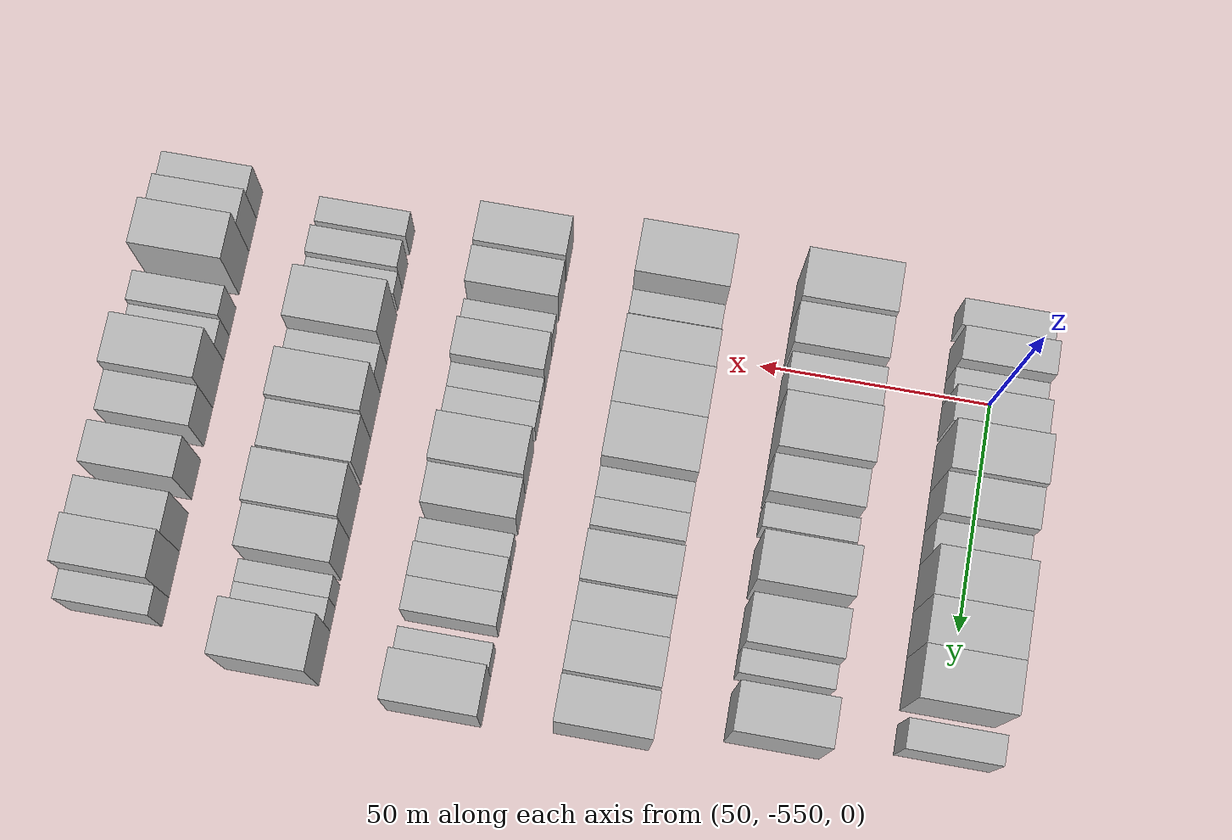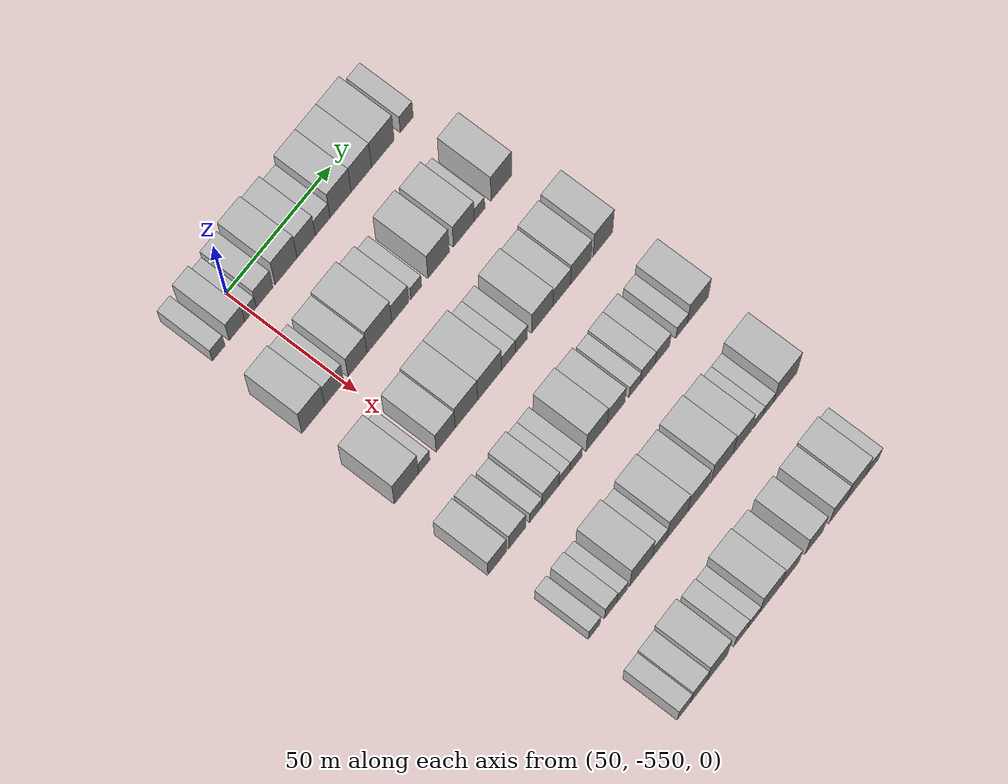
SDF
<sdf version="1.6">
 <world name="default">
  <model name="building_1">
   <static>1</static>
   <pose>50.0000 -566.0021 0 0.000000 0.000000 0.000000</pose>
   <link name="link">
    <pose>0 0 6.00 0 0 0</pose>
    <collision name="collision"><geometry><box><size>20.0000 5.9958 12.0000</size></box></geometry></collision>
    <visual name="visual">
     <cast_shadows>0</cast_shadows>
     <geometry><box><size>20.0000 5.9958 12.0000</size></box></geometry>
     <material>
      <script>
       <uri>model://HANNAS_wall/materials/scripts</uri>
       <uri>model://HANNAS_wall/materials/textures</uri>
       <name>vrc/HANNAS_wall</name>
      </script>
     </material>
    </visual>
   </link>
  </model>
  <model name="building_2">
   <static>1</static>
   <pose>50.0000 -557.2755 0 0.000000 0.000000 0.000000</pose>
   <link name="link">
    <pose>0 0 9.00 0 0 0</pose>
    <collision name="collision"><geometry><box><size>20.0000 7.4574 18.0000</size></box></geometry></collision>
    <visual name="visual">
     <cast_shadows>0</cast_shadows>
     <geometry><box><size>20.0000 7.4574 18.0000</size></box></geometry>
     <material>
      <script>
       <uri>model://HANNAS_wall/materials/scripts</uri>
       <uri>model://HANNAS_wall/materials/textures</uri>
       <name>vrc/HANNAS_wall</name>
      </script>
     </material>
    </visual>
   </link>
  </model>
  <model name="building_3">
   <static>1</static>
   <pose>50.0000 -550.8041 0 0.000000 0.000000 0.000000</pose>
   <link name="link">
    <pose>0 0 6.00 0 0 0</pose>
    <collision name="collision"><geometry><box><size>20.0000 5.4854 12.0000</size></box></geometry></collision>
    <visual name="visual">
     <cast_shadows>0</cast_shadows>
     <geometry><box><size>20.0000 5.4854 12.0000</size></box></geometry>
     <material>
      <script>
       <uri>model://HANNAS_wall/materials/scripts</uri>
       <uri>model://HANNAS_wall/materials/textures</uri>
       <name>vrc/HANNAS_wall</name>
      </script>
     </material>
    </visual>
   </link>
  </model>
  <model name="building_4">
   <static>1</static>
   <pose>50.0000 -544.0784 0 0.000000 0.000000 0.000000</pose>
   <link name="link">
    <pose>0 0 9.00 0 0 0</pose>
    <collision name="collision"><geometry><box><size>20.0000 7.9661 18.0000</size></box></geometry></collision>
    <visual name="visual">
     <cast_shadows>0</cast_shadows>
     <geometry><box><size>20.0000 7.9661 18.0000</size></box></geometry>
     <material>
      <script>
       <uri>model://HANNAS_wall/materials/scripts</uri>
       <uri>model://HANNAS_wall/materials/textures</uri>
       <name>vrc/HANNAS_wall</name>
      </script>
     </material>
    </visual>
   </link>
  </model>
  <model name="building_5">
   <static>1</static>
   <pose>50.0000 -533.8237 0 0.000000 0.000000 0.000000</pose>
   <link name="link">
    <pose>0 0 12.00 0 0 0</pose>
    <collision name="collision"><geometry><box><size>20.0000 10.5432 24.0000</size></box></geometry></collision>
    <visual name="visual">
     <cast_shadows>0</cast_shadows>
     <geometry><box><size>20.0000 10.5432 24.0000</size></box></geometry>
     <material>
      <script>
       <uri>model://HANNAS_wall/materials/scripts</uri>
       <uri>model://HANNAS_wall/materials/textures</uri>
       <name>vrc/HANNAS_wall</name>
      </script>
     </material>
    </visual>
   </link>
  </model>
  <model name="building_6">
   <static>1</static>
   <pose>50.0000 -524.1240 0 0.000000 0.000000 0.000000</pose>
   <link name="link">
    <pose>0 0 10.50 0 0 0</pose>
    <collision name="collision"><geometry><box><size>20.0000 8.8564 21.0000</size></box></geometry></collision>
    <visual name="visual">
     <cast_shadows>0</cast_shadows>
     <geometry><box><size>20.0000 8.8564 21.0000</size></box></geometry>
     <material>
      <script>
       <uri>model://HANNAS_wall/materials/scripts</uri>
       <uri>model://HANNAS_wall/materials/textures</uri>
       <name>vrc/HANNAS_wall</name>
      </script>
     </material>
    </visual>
   </link>
  </model>
  <model name="building_7">
   <static>1</static>
   <pose>50.0000 -516.1544 0 0.000000 0.000000 0.000000</pose>
   <link name="link">
    <pose>0 0 7.50 0 0 0</pose>
    <collision name="collision"><geometry><box><size>20.0000 7.0828 15.0000</size></box></geometry></collision>
    <visual name="visual">
     <cast_shadows>0</cast_shadows>
     <geometry><box><size>20.0000 7.0828 15.0000</size></box></geometry>
     <material>
      <script>
       <uri>model://HANNAS_wall/materials/scripts</uri>
       <uri>model://HANNAS_wall/materials/textures</uri>
       <name>vrc/HANNAS_wall</name>
      </script>
     </material>
    </visual>
   </link>
  </model>
  <model name="building_8">
   <static>1</static>
   <pose>50.0000 -507.4797 0 0.000000 0.000000 0.000000</pose>
   <link name="link">
    <pose>0 0 12.00 0 0 0</pose>
    <collision name="collision"><geometry><box><size>20.0000 10.2665 24.0000</size></box></geometry></collision>
    <visual name="visual">
     <cast_shadows>0</cast_shadows>
     <geometry><box><size>20.0000 10.2665 24.0000</size></box></geometry>
     <material>
      <script>
       <uri>model://HANNAS_wall/materials/scripts</uri>
       <uri>model://HANNAS_wall/materials/textures</uri>
       <name>vrc/HANNAS_wall</name>
      </script>
     </material>
    </visual>
   </link>
  </model>
  <model name="building_9">
   <static>1</static>
   <pose>50.0000 -497.3951 0 0.000000 0.000000 0.000000</pose>
   <link name="link">
    <pose>0 0 12.00 0 0 0</pose>
    <collision name="collision"><geometry><box><size>20.0000 9.9028 24.0000</size></box></geometry></collision>
    <visual name="visual">
     <cast_shadows>0</cast_shadows>
     <geometry><box><size>20.0000 9.9028 24.0000</size></box></geometry>
     <material>
      <script>
       <uri>model://HANNAS_wall/materials/scripts</uri>
       <uri>model://HANNAS_wall/materials/textures</uri>
       <name>vrc/HANNAS_wall</name>
      </script>
     </material>
    </visual>
   </link>
  </model>
  <model name="building_10">
   <static>1</static>
   <pose>50.0000 -486.9409 0 0.000000 0.000000 0.000000</pose>
   <link name="link">
    <pose>0 0 12.00 0 0 0</pose>
    <collision name="collision"><geometry><box><size>20.0000 11.0058 24.0000</size></box></geometry></collision>
    <visual name="visual">
     <cast_shadows>0</cast_shadows>
     <geometry><box><size>20.0000 11.0058 24.0000</size></box></geometry>
     <material>
      <script>
       <uri>model://HANNAS_wall/materials/scripts</uri>
       <uri>model://HANNAS_wall/materials/textures</uri>
       <name>vrc/HANNAS_wall</name>
      </script>
     </material>
    </visual>
   </link>
  </model>
  <model name="building_11">
   <static>1</static>
   <pose>50.0000 -475.2833 0 0.000000 0.000000 0.000000</pose>
   <link name="link">
    <pose>0 0 7.50 0 0 0</pose>
    <collision name="collision"><geometry><box><size>20.0000 6.3094 15.0000</size></box></geometry></collision>
    <visual name="visual">
     <cast_shadows>0</cast_shadows>
     <geometry><box><size>20.0000 6.3094 15.0000</size></box></geometry>
     <material>
      <script>
       <uri>model://HANNAS_wall/materials/scripts</uri>
       <uri>model://HANNAS_wall/materials/textures</uri>
       <name>vrc/HANNAS_wall</name>
      </script>
     </material>
    </visual>
   </link>
  </model>
  <model name="building_125">
   <static>1</static>
   <pose>85.0000 -564.5752 0 0.000000 0.000000 0.000000</pose>
   <link name="link">
    <pose>0 0 12.00 0 0 0</pose>
    <collision name="collision"><geometry><box><size>20.0000 10.8495 24.0000</size></box></geometry></collision>
    <visual name="visual">
     <cast_shadows>0</cast_shadows>
     <geometry><box><size>20.0000 10.8495 24.0000</size></box></geometry>
     <material>
      <script>
       <uri>model://HANNAS_wall/materials/scripts</uri>
       <uri>model://HANNAS_wall/materials/textures</uri>
       <name>vrc/HANNAS_wall</name>
      </script>
     </material>
    </visual>
   </link>
  </model>
  <model name="building_126">
   <static>1</static>
   <pose>85.0000 -554.5731 0 0.000000 0.000000 0.000000</pose>
   <link name="link">
    <pose>0 0 10.50 0 0 0</pose>
    <collision name="collision"><geometry><box><size>20.0000 9.1548 21.0000</size></box></geometry></collision>
    <visual name="visual">
     <cast_shadows>0</cast_shadows>
     <geometry><box><size>20.0000 9.1548 21.0000</size></box></geometry>
     <material>
      <script>
       <uri>model://HANNAS_wall/materials/scripts</uri>
       <uri>model://HANNAS_wall/materials/textures</uri>
       <name>vrc/HANNAS_wall</name>
      </script>
     </material>
    </visual>
   </link>
  </model>
  <model name="building_127">
   <static>1</static>
   <pose>85.0000 -543.4138 0 0.000000 0.000000 0.000000</pose>
   <link name="link">
    <pose>0 0 10.50 0 0 0</pose>
    <collision name="collision"><geometry><box><size>20.0000 9.1639 21.0000</size></box></geometry></collision>
    <visual name="visual">
     <cast_shadows>0</cast_shadows>
     <geometry><box><size>20.0000 9.1639 21.0000</size></box></geometry>
     <material>
      <script>
       <uri>model://HANNAS_wall/materials/scripts</uri>
       <uri>model://HANNAS_wall/materials/textures</uri>
       <name>vrc/HANNAS_wall</name>
      </script>
     </material>
    </visual>
   </link>
  </model>
  <model name="building_128">
   <static>1</static>
   <pose>85.0000 -532.8423 0 0.000000 0.000000 0.000000</pose>
   <link name="link">
    <pose>0 0 12.00 0 0 0</pose>
    <collision name="collision"><geometry><box><size>20.0000 11.9789 24.0000</size></box></geometry></collision>
    <visual name="visual">
     <cast_shadows>0</cast_shadows>
     <geometry><box><size>20.0000 11.9789 24.0000</size></box></geometry>
     <material>
      <script>
       <uri>model://HANNAS_wall/materials/scripts</uri>
       <uri>model://HANNAS_wall/materials/textures</uri>
       <name>vrc/HANNAS_wall</name>
      </script>
     </material>
    </visual>
   </link>
  </model>
  <model name="building_129">
   <static>1</static>
   <pose>85.0000 -522.7722 0 0.000000 0.000000 0.000000</pose>
   <link name="link">
    <pose>0 0 9.00 0 0 0</pose>
    <collision name="collision"><geometry><box><size>20.0000 8.1614 18.0000</size></box></geometry></collision>
    <visual name="visual">
     <cast_shadows>0</cast_shadows>
     <geometry><box><size>20.0000 8.1614 18.0000</size></box></geometry>
     <material>
      <script>
       <uri>model://HANNAS_wall/materials/scripts</uri>
       <uri>model://HANNAS_wall/materials/textures</uri>
       <name>vrc/HANNAS_wall</name>
      </script>
     </material>
    </visual>
   </link>
  </model>
  <model name="building_130">
   <static>1</static>
   <pose>85.0000 -515.0618 0 0.000000 0.000000 0.000000</pose>
   <link name="link">
    <pose>0 0 6.00 0 0 0</pose>
    <collision name="collision"><geometry><box><size>20.0000 5.2594 12.0000</size></box></geometry></collision>
    <visual name="visual">
     <cast_shadows>0</cast_shadows>
     <geometry><box><size>20.0000 5.2594 12.0000</size></box></geometry>
     <material>
      <script>
       <uri>model://HANNAS_wall/materials/scripts</uri>
       <uri>model://HANNAS_wall/materials/textures</uri>
       <name>vrc/HANNAS_wall</name>
      </script>
     </material>
    </visual>
   </link>
  </model>
  <model name="building_131">
   <static>1</static>
   <pose>85.0000 -504.2198 0 0.000000 0.000000 0.000000</pose>
   <link name="link">
    <pose>0 0 12.00 0 0 0</pose>
    <collision name="collision"><geometry><box><size>20.0000 10.4248 24.0000</size></box></geometry></collision>
    <visual name="visual">
     <cast_shadows>0</cast_shadows>
     <geometry><box><size>20.0000 10.4248 24.0000</size></box></geometry>
     <material>
      <script>
       <uri>model://HANNAS_wall/materials/scripts</uri>
       <uri>model://HANNAS_wall/materials/textures</uri>
       <name>vrc/HANNAS_wall</name>
      </script>
     </material>
    </visual>
   </link>
  </model>
  <model name="building_132">
   <static>1</static>
   <pose>85.0000 -491.9169 0 0.000000 0.000000 0.000000</pose>
   <link name="link">
    <pose>0 0 10.50 0 0 0</pose>
    <collision name="collision"><geometry><box><size>20.0000 10.1810 21.0000</size></box></geometry></collision>
    <visual name="visual">
     <cast_shadows>0</cast_shadows>
     <geometry><box><size>20.0000 10.1810 21.0000</size></box></geometry>
     <material>
      <script>
       <uri>model://HANNAS_wall/materials/scripts</uri>
       <uri>model://HANNAS_wall/materials/textures</uri>
       <name>vrc/HANNAS_wall</name>
      </script>
     </material>
    </visual>
   </link>
  </model>
  <model name="building_133">
   <static>1</static>
   <pose>85.0000 -484.2434 0 0.000000 0.000000 0.000000</pose>
   <link name="link">
    <pose>0 0 6.00 0 0 0</pose>
    <collision name="collision"><geometry><box><size>20.0000 5.1661 12.0000</size></box></geometry></collision>
    <visual name="visual">
     <cast_shadows>0</cast_shadows>
     <geometry><box><size>20.0000 5.1661 12.0000</size></box></geometry>
     <material>
      <script>
       <uri>model://HANNAS_wall/materials/scripts</uri>
       <uri>model://HANNAS_wall/materials/textures</uri>
       <name>vrc/HANNAS_wall</name>
      </script>
     </material>
    </visual>
   </link>
  </model>
  <model name="building_134">
   <static>1</static>
   <pose>85.0000 -473.5802 0 0.000000 0.000000 0.000000</pose>
   <link name="link">
    <pose>0 0 12.00 0 0 0</pose>
    <collision name="collision"><geometry><box><size>20.0000 10.1602 24.0000</size></box></geometry></collision>
    <visual name="visual">
     <cast_shadows>0</cast_shadows>
     <geometry><box><size>20.0000 10.1602 24.0000</size></box></geometry>
     <material>
      <script>
       <uri>model://HANNAS_wall/materials/scripts</uri>
       <uri>model://HANNAS_wall/materials/textures</uri>
       <name>vrc/HANNAS_wall</name>
      </script>
     </material>
    </visual>
   </link>
  </model>
  <model name="building_256">
   <static>1</static>
   <pose>120.0000 -564.1861 0 0.000000 0.000000 0.000000</pose>
   <link name="link">
    <pose>0 0 12.00 0 0 0</pose>
    <collision name="collision"><geometry><box><size>20.0000 11.6279 24.0000</size></box></geometry></collision>
    <visual name="visual">
     <cast_shadows>0</cast_shadows>
     <geometry><box><size>20.0000 11.6279 24.0000</size></box></geometry>
     <material>
      <script>
       <uri>model://HANNAS_wall/materials/scripts</uri>
       <uri>model://HANNAS_wall/materials/textures</uri>
       <name>vrc/HANNAS_wall</name>
      </script>
     </material>
    </visual>
   </link>
  </model>
  <model name="building_257">
   <static>1</static>
   <pose>120.0000 -555.6757 0 0.000000 0.000000 0.000000</pose>
   <link name="link">
    <pose>0 0 6.00 0 0 0</pose>
    <collision name="collision"><geometry><box><size>20.0000 5.3928 12.0000</size></box></geometry></collision>
    <visual name="visual">
     <cast_shadows>0</cast_shadows>
     <geometry><box><size>20.0000 5.3928 12.0000</size></box></geometry>
     <material>
      <script>
       <uri>model://HANNAS_wall/materials/scripts</uri>
       <uri>model://HANNAS_wall/materials/textures</uri>
       <name>vrc/HANNAS_wall</name>
      </script>
     </material>
    </visual>
   </link>
  </model>
  <model name="building_258">
   <static>1</static>
   <pose>120.0000 -545.4255 0 0.000000 0.000000 0.000000</pose>
   <link name="link">
    <pose>0 0 10.50 0 0 0</pose>
    <collision name="collision"><geometry><box><size>20.0000 9.1075 21.0000</size></box></geometry></collision>
    <visual name="visual">
     <cast_shadows>0</cast_shadows>
     <geometry><box><size>20.0000 9.1075 21.0000</size></box></geometry>
     <material>
      <script>
       <uri>model://HANNAS_wall/materials/scripts</uri>
       <uri>model://HANNAS_wall/materials/textures</uri>
       <name>vrc/HANNAS_wall</name>
      </script>
     </material>
    </visual>
   </link>
  </model>
  <model name="building_259">
   <static>1</static>
   <pose>120.0000 -535.4527 0 0.000000 0.000000 0.000000</pose>
   <link name="link">
    <pose>0 0 12.00 0 0 0</pose>
    <collision name="collision"><geometry><box><size>20.0000 10.8380 24.0000</size></box></geometry></collision>
    <visual name="visual">
     <cast_shadows>0</cast_shadows>
     <geometry><box><size>20.0000 10.8380 24.0000</size></box></geometry>
     <material>
      <script>
       <uri>model://HANNAS_wall/materials/scripts</uri>
       <uri>model://HANNAS_wall/materials/textures</uri>
       <name>vrc/HANNAS_wall</name>
      </script>
     </material>
    </visual>
   </link>
  </model>
  <model name="building_260">
   <static>1</static>
   <pose>120.0000 -524.2302 0 0.000000 0.000000 0.000000</pose>
   <link name="link">
    <pose>0 0 12.00 0 0 0</pose>
    <collision name="collision"><geometry><box><size>20.0000 11.6070 24.0000</size></box></geometry></collision>
    <visual name="visual">
     <cast_shadows>0</cast_shadows>
     <geometry><box><size>20.0000 11.6070 24.0000</size></box></geometry>
     <material>
      <script>
       <uri>model://HANNAS_wall/materials/scripts</uri>
       <uri>model://HANNAS_wall/materials/textures</uri>
       <name>vrc/HANNAS_wall</name>
      </script>
     </material>
    </visual>
   </link>
  </model>
  <model name="building_261">
   <static>1</static>
   <pose>120.0000 -515.1118 0 0.000000 0.000000 0.000000</pose>
   <link name="link">
    <pose>0 0 7.50 0 0 0</pose>
    <collision name="collision"><geometry><box><size>20.0000 6.6299 15.0000</size></box></geometry></collision>
    <visual name="visual">
     <cast_shadows>0</cast_shadows>
     <geometry><box><size>20.0000 6.6299 15.0000</size></box></geometry>
     <material>
      <script>
       <uri>model://HANNAS_wall/materials/scripts</uri>
       <uri>model://HANNAS_wall/materials/textures</uri>
       <name>vrc/HANNAS_wall</name>
      </script>
     </material>
    </visual>
   </link>
  </model>
  <model name="building_262">
   <static>1</static>
   <pose>120.0000 -508.7792 0 0.000000 0.000000 0.000000</pose>
   <link name="link">
    <pose>0 0 7.50 0 0 0</pose>
    <collision name="collision"><geometry><box><size>20.0000 6.0353 15.0000</size></box></geometry></collision>
    <visual name="visual">
     <cast_shadows>0</cast_shadows>
     <geometry><box><size>20.0000 6.0353 15.0000</size></box></geometry>
     <material>
      <script>
       <uri>model://HANNAS_wall/materials/scripts</uri>
       <uri>model://HANNAS_wall/materials/textures</uri>
       <name>vrc/HANNAS_wall</name>
      </script>
     </material>
    </visual>
   </link>
  </model>
  <model name="building_263">
   <static>1</static>
   <pose>120.0000 -498.5709 0 0.000000 0.000000 0.000000</pose>
   <link name="link">
    <pose>0 0 10.50 0 0 0</pose>
    <collision name="collision"><geometry><box><size>20.0000 10.3811 21.0000</size></box></geometry></collision>
    <visual name="visual">
     <cast_shadows>0</cast_shadows>
     <geometry><box><size>20.0000 10.3811 21.0000</size></box></geometry>
     <material>
      <script>
       <uri>model://HANNAS_wall/materials/scripts</uri>
       <uri>model://HANNAS_wall/materials/textures</uri>
       <name>vrc/HANNAS_wall</name>
      </script>
     </material>
    </visual>
   </link>
  </model>
  <model name="building_264">
   <static>1</static>
   <pose>120.0000 -489.0834 0 0.000000 0.000000 0.000000</pose>
   <link name="link">
    <pose>0 0 9.00 0 0 0</pose>
    <collision name="collision"><geometry><box><size>20.0000 8.5941 18.0000</size></box></geometry></collision>
    <visual name="visual">
     <cast_shadows>0</cast_shadows>
     <geometry><box><size>20.0000 8.5941 18.0000</size></box></geometry>
     <material>
      <script>
       <uri>model://HANNAS_wall/materials/scripts</uri>
       <uri>model://HANNAS_wall/materials/textures</uri>
       <name>vrc/HANNAS_wall</name>
      </script>
     </material>
    </visual>
   </link>
  </model>
  <model name="building_265">
   <static>1</static>
   <pose>120.0000 -479.7365 0 0.000000 0.000000 0.000000</pose>
   <link name="link">
    <pose>0 0 10.50 0 0 0</pose>
    <collision name="collision"><geometry><box><size>20.0000 10.0997 21.0000</size></box></geometry></collision>
    <visual name="visual">
     <cast_shadows>0</cast_shadows>
     <geometry><box><size>20.0000 10.0997 21.0000</size></box></geometry>
     <material>
      <script>
       <uri>model://HANNAS_wall/materials/scripts</uri>
       <uri>model://HANNAS_wall/materials/textures</uri>
       <name>vrc/HANNAS_wall</name>
      </script>
     </material>
    </visual>
   </link>
  </model>
  <model name="building_266">
   <static>1</static>
   <pose>120.0000 -468.8409 0 0.000000 0.000000 0.000000</pose>
   <link name="link">
    <pose>0 0 12.00 0 0 0</pose>
    <collision name="collision"><geometry><box><size>20.0000 9.6913 24.0000</size></box></geometry></collision>
    <visual name="visual">
     <cast_shadows>0</cast_shadows>
     <geometry><box><size>20.0000 9.6913 24.0000</size></box></geometry>
     <material>
      <script>
       <uri>model://HANNAS_wall/materials/scripts</uri>
       <uri>model://HANNAS_wall/materials/textures</uri>
       <name>vrc/HANNAS_wall</name>
      </script>
     </material>
    </visual>
   </link>
  </model>
  <model name="building_378">
   <static>1</static>
   <pose>155.0000 -565.5223 0 0.000000 0.000000 0.000000</pose>
   <link name="link">
    <pose>0 0 9.00 0 0 0</pose>
    <collision name="collision"><geometry><box><size>20.0000 8.9554 18.0000</size></box></geometry></collision>
    <visual name="visual">
     <cast_shadows>0</cast_shadows>
     <geometry><box><size>20.0000 8.9554 18.0000</size></box></geometry>
     <material>
      <script>
       <uri>model://HANNAS_wall/materials/scripts</uri>
       <uri>model://HANNAS_wall/materials/textures</uri>
       <name>vrc/HANNAS_wall</name>
      </script>
     </material>
    </visual>
   </link>
  </model>
  <model name="building_379">
   <static>1</static>
   <pose>155.0000 -555.9621 0 0.000000 0.000000 0.000000</pose>
   <link name="link">
    <pose>0 0 9.00 0 0 0</pose>
    <collision name="collision"><geometry><box><size>20.0000 8.1649 18.0000</size></box></geometry></collision>
    <visual name="visual">
     <cast_shadows>0</cast_shadows>
     <geometry><box><size>20.0000 8.1649 18.0000</size></box></geometry>
     <material>
      <script>
       <uri>model://HANNAS_wall/materials/scripts</uri>
       <uri>model://HANNAS_wall/materials/textures</uri>
       <name>vrc/HANNAS_wall</name>
      </script>
     </material>
    </visual>
   </link>
  </model>
  <model name="building_380">
   <static>1</static>
   <pose>155.0000 -546.9111 0 0.000000 0.000000 0.000000</pose>
   <link name="link">
    <pose>0 0 6.00 0 0 0</pose>
    <collision name="collision"><geometry><box><size>20.0000 5.9371 12.0000</size></box></geometry></collision>
    <visual name="visual">
     <cast_shadows>0</cast_shadows>
     <geometry><box><size>20.0000 5.9371 12.0000</size></box></geometry>
     <material>
      <script>
       <uri>model://HANNAS_wall/materials/scripts</uri>
       <uri>model://HANNAS_wall/materials/textures</uri>
       <name>vrc/HANNAS_wall</name>
      </script>
     </material>
    </visual>
   </link>
  </model>
  <model name="building_381">
   <static>1</static>
   <pose>155.0000 -539.8017 0 0.000000 0.000000 0.000000</pose>
   <link name="link">
    <pose>0 0 9.00 0 0 0</pose>
    <collision name="collision"><geometry><box><size>20.0000 8.2818 18.0000</size></box></geometry></collision>
    <visual name="visual">
     <cast_shadows>0</cast_shadows>
     <geometry><box><size>20.0000 8.2818 18.0000</size></box></geometry>
     <material>
      <script>
       <uri>model://HANNAS_wall/materials/scripts</uri>
       <uri>model://HANNAS_wall/materials/textures</uri>
       <name>vrc/HANNAS_wall</name>
      </script>
     </material>
    </visual>
   </link>
  </model>
  <model name="building_382">
   <static>1</static>
   <pose>155.0000 -532.9852 0 0.000000 0.000000 0.000000</pose>
   <link name="link">
    <pose>0 0 6.00 0 0 0</pose>
    <collision name="collision"><geometry><box><size>20.0000 5.3512 12.0000</size></box></geometry></collision>
    <visual name="visual">
     <cast_shadows>0</cast_shadows>
     <geometry><box><size>20.0000 5.3512 12.0000</size></box></geometry>
     <material>
      <script>
       <uri>model://HANNAS_wall/materials/scripts</uri>
       <uri>model://HANNAS_wall/materials/textures</uri>
       <name>vrc/HANNAS_wall</name>
      </script>
     </material>
    </visual>
   </link>
  </model>
  <model name="building_383">
   <static>1</static>
   <pose>155.0000 -527.4396 0 0.000000 0.000000 0.000000</pose>
   <link name="link">
    <pose>0 0 6.00 0 0 0</pose>
    <collision name="collision"><geometry><box><size>20.0000 5.7400 12.0000</size></box></geometry></collision>
    <visual name="visual">
     <cast_shadows>0</cast_shadows>
     <geometry><box><size>20.0000 5.7400 12.0000</size></box></geometry>
     <material>
      <script>
       <uri>model://HANNAS_wall/materials/scripts</uri>
       <uri>model://HANNAS_wall/materials/textures</uri>
       <name>vrc/HANNAS_wall</name>
      </script>
     </material>
    </visual>
   </link>
  </model>
  <model name="building_384">
   <static>1</static>
   <pose>155.0000 -517.4441 0 0.000000 0.000000 0.000000</pose>
   <link name="link">
    <pose>0 0 10.50 0 0 0</pose>
    <collision name="collision"><geometry><box><size>20.0000 10.2512 21.0000</size></box></geometry></collision>
    <visual name="visual">
     <cast_shadows>0</cast_shadows>
     <geometry><box><size>20.0000 10.2512 21.0000</size></box></geometry>
     <material>
      <script>
       <uri>model://HANNAS_wall/materials/scripts</uri>
       <uri>model://HANNAS_wall/materials/textures</uri>
       <name>vrc/HANNAS_wall</name>
      </script>
     </material>
    </visual>
   </link>
  </model>
  <model name="building_385">
   <static>1</static>
   <pose>155.0000 -507.9889 0 0.000000 0.000000 0.000000</pose>
   <link name="link">
    <pose>0 0 9.00 0 0 0</pose>
    <collision name="collision"><geometry><box><size>20.0000 8.6591 18.0000</size></box></geometry></collision>
    <visual name="visual">
     <cast_shadows>0</cast_shadows>
     <geometry><box><size>20.0000 8.6591 18.0000</size></box></geometry>
     <material>
      <script>
       <uri>model://HANNAS_wall/materials/scripts</uri>
       <uri>model://HANNAS_wall/materials/textures</uri>
       <name>vrc/HANNAS_wall</name>
      </script>
     </material>
    </visual>
   </link>
  </model>
  <model name="building_386">
   <static>1</static>
   <pose>155.0000 -498.8530 0 0.000000 0.000000 0.000000</pose>
   <link name="link">
    <pose>0 0 6.00 0 0 0</pose>
    <collision name="collision"><geometry><box><size>20.0000 5.6127 12.0000</size></box></geometry></collision>
    <visual name="visual">
     <cast_shadows>0</cast_shadows>
     <geometry><box><size>20.0000 5.6127 12.0000</size></box></geometry>
     <material>
      <script>
       <uri>model://HANNAS_wall/materials/scripts</uri>
       <uri>model://HANNAS_wall/materials/textures</uri>
       <name>vrc/HANNAS_wall</name>
      </script>
     </material>
    </visual>
   </link>
  </model>
  <model name="building_387">
   <static>1</static>
   <pose>155.0000 -492.4238 0 0.000000 0.000000 0.000000</pose>
   <link name="link">
    <pose>0 0 7.50 0 0 0</pose>
    <collision name="collision"><geometry><box><size>20.0000 7.2458 15.0000</size></box></geometry></collision>
    <visual name="visual">
     <cast_shadows>0</cast_shadows>
     <geometry><box><size>20.0000 7.2458 15.0000</size></box></geometry>
     <material>
      <script>
       <uri>model://HANNAS_wall/materials/scripts</uri>
       <uri>model://HANNAS_wall/materials/textures</uri>
       <name>vrc/HANNAS_wall</name>
      </script>
     </material>
    </visual>
   </link>
  </model>
  <model name="building_388">
   <static>1</static>
   <pose>155.0000 -485.2194 0 0.000000 0.000000 0.000000</pose>
   <link name="link">
    <pose>0 0 7.50 0 0 0</pose>
    <collision name="collision"><geometry><box><size>20.0000 7.1629 15.0000</size></box></geometry></collision>
    <visual name="visual">
     <cast_shadows>0</cast_shadows>
     <geometry><box><size>20.0000 7.1629 15.0000</size></box></geometry>
     <material>
      <script>
       <uri>model://HANNAS_wall/materials/scripts</uri>
       <uri>model://HANNAS_wall/materials/textures</uri>
       <name>vrc/HANNAS_wall</name>
      </script>
     </material>
    </visual>
   </link>
  </model>
  <model name="building_389">
   <static>1</static>
   <pose>155.0000 -475.7964 0 0.000000 0.000000 0.000000</pose>
   <link name="link">
    <pose>0 0 6.00 0 0 0</pose>
    <collision name="collision"><geometry><box><size>20.0000 5.6832 12.0000</size></box></geometry></collision>
    <visual name="visual">
     <cast_shadows>0</cast_shadows>
     <geometry><box><size>20.0000 5.6832 12.0000</size></box></geometry>
     <material>
      <script>
       <uri>model://HANNAS_wall/materials/scripts</uri>
       <uri>model://HANNAS_wall/materials/textures</uri>
       <name>vrc/HANNAS_wall</name>
      </script>
     </material>
    </visual>
   </link>
  </model>
  <model name="building_390">
   <static>1</static>
   <pose>155.0000 -467.7347 0 0.000000 0.000000 0.000000</pose>
   <link name="link">
    <pose>0 0 10.50 0 0 0</pose>
    <collision name="collision"><geometry><box><size>20.0000 10.4400 21.0000</size></box></geometry></collision>
    <visual name="visual">
     <cast_shadows>0</cast_shadows>
     <geometry><box><size>20.0000 10.4400 21.0000</size></box></geometry>
     <material>
      <script>
       <uri>model://HANNAS_wall/materials/scripts</uri>
       <uri>model://HANNAS_wall/materials/textures</uri>
       <name>vrc/HANNAS_wall</name>
      </script>
     </material>
    </visual>
   </link>
  </model>
  <model name="building_503">
   <static>1</static>
   <pose>190.0000 -564.1529 0 0.000000 0.000000 0.000000</pose>
   <link name="link">
    <pose>0 0 6.00 0 0 0</pose>
    <collision name="collision"><geometry><box><size>20.0000 5.6942 12.0000</size></box></geometry></collision>
    <visual name="visual">
     <cast_shadows>0</cast_shadows>
     <geometry><box><size>20.0000 5.6942 12.0000</size></box></geometry>
     <material>
      <script>
       <uri>model://HANNAS_wall/materials/scripts</uri>
       <uri>model://HANNAS_wall/materials/textures</uri>
       <name>vrc/HANNAS_wall</name>
      </script>
     </material>
    </visual>
   </link>
  </model>
  <model name="building_504">
   <static>1</static>
   <pose>190.0000 -556.2306 0 0.000000 0.000000 0.000000</pose>
   <link name="link">
    <pose>0 0 7.50 0 0 0</pose>
    <collision name="collision"><geometry><box><size>20.0000 6.1503 15.0000</size></box></geometry></collision>
    <visual name="visual">
     <cast_shadows>0</cast_shadows>
     <geometry><box><size>20.0000 6.1503 15.0000</size></box></geometry>
     <material>
      <script>
       <uri>model://HANNAS_wall/materials/scripts</uri>
       <uri>model://HANNAS_wall/materials/textures</uri>
       <name>vrc/HANNAS_wall</name>
      </script>
     </material>
    </visual>
   </link>
  </model>
  <model name="building_505">
   <static>1</static>
   <pose>190.0000 -550.6641 0 0.000000 0.000000 0.000000</pose>
   <link name="link">
    <pose>0 0 6.00 0 0 0</pose>
    <collision name="collision"><geometry><box><size>20.0000 4.9827 12.0000</size></box></geometry></collision>
    <visual name="visual">
     <cast_shadows>0</cast_shadows>
     <geometry><box><size>20.0000 4.9827 12.0000</size></box></geometry>
     <material>
      <script>
       <uri>model://HANNAS_wall/materials/scripts</uri>
       <uri>model://HANNAS_wall/materials/textures</uri>
       <name>vrc/HANNAS_wall</name>
      </script>
     </material>
    </visual>
   </link>
  </model>
  <model name="building_506">
   <static>1</static>
   <pose>190.0000 -541.5400 0 0.000000 0.000000 0.000000</pose>
   <link name="link">
    <pose>0 0 12.00 0 0 0</pose>
    <collision name="collision"><geometry><box><size>20.0000 11.2657 24.0000</size></box></geometry></collision>
    <visual name="visual">
     <cast_shadows>0</cast_shadows>
     <geometry><box><size>20.0000 11.2657 24.0000</size></box></geometry>
     <material>
      <script>
       <uri>model://HANNAS_wall/materials/scripts</uri>
       <uri>model://HANNAS_wall/materials/textures</uri>
       <name>vrc/HANNAS_wall</name>
      </script>
     </material>
    </visual>
   </link>
  </model>
  <model name="building_507">
   <static>1</static>
   <pose>190.0000 -532.5248 0 0.000000 0.000000 0.000000</pose>
   <link name="link">
    <pose>0 0 7.50 0 0 0</pose>
    <collision name="collision"><geometry><box><size>20.0000 6.7647 15.0000</size></box></geometry></collision>
    <visual name="visual">
     <cast_shadows>0</cast_shadows>
     <geometry><box><size>20.0000 6.7647 15.0000</size></box></geometry>
     <material>
      <script>
       <uri>model://HANNAS_wall/materials/scripts</uri>
       <uri>model://HANNAS_wall/materials/textures</uri>
       <name>vrc/HANNAS_wall</name>
      </script>
     </material>
    </visual>
   </link>
  </model>
  <model name="building_508">
   <static>1</static>
   <pose>190.0000 -523.9591 0 0.000000 0.000000 0.000000</pose>
   <link name="link">
    <pose>0 0 12.00 0 0 0</pose>
    <collision name="collision"><geometry><box><size>20.0000 10.3667 24.0000</size></box></geometry></collision>
    <visual name="visual">
     <cast_shadows>0</cast_shadows>
     <geometry><box><size>20.0000 10.3667 24.0000</size></box></geometry>
     <material>
      <script>
       <uri>model://HANNAS_wall/materials/scripts</uri>
       <uri>model://HANNAS_wall/materials/textures</uri>
       <name>vrc/HANNAS_wall</name>
      </script>
     </material>
    </visual>
   </link>
  </model>
  <model name="building_509">
   <static>1</static>
   <pose>190.0000 -513.7112 0 0.000000 0.000000 0.000000</pose>
   <link name="link">
    <pose>0 0 10.50 0 0 0</pose>
    <collision name="collision"><geometry><box><size>20.0000 10.1292 21.0000</size></box></geometry></collision>
    <visual name="visual">
     <cast_shadows>0</cast_shadows>
     <geometry><box><size>20.0000 10.1292 21.0000</size></box></geometry>
     <material>
      <script>
       <uri>model://HANNAS_wall/materials/scripts</uri>
       <uri>model://HANNAS_wall/materials/textures</uri>
       <name>vrc/HANNAS_wall</name>
      </script>
     </material>
    </visual>
   </link>
  </model>
  <model name="building_510">
   <static>1</static>
   <pose>190.0000 -502.0829 0 0.000000 0.000000 0.000000</pose>
   <link name="link">
    <pose>0 0 12.00 0 0 0</pose>
    <collision name="collision"><geometry><box><size>20.0000 11.1274 24.0000</size></box></geometry></collision>
    <visual name="visual">
     <cast_shadows>0</cast_shadows>
     <geometry><box><size>20.0000 11.1274 24.0000</size></box></geometry>
     <material>
      <script>
       <uri>model://HANNAS_wall/materials/scripts</uri>
       <uri>model://HANNAS_wall/materials/textures</uri>
       <name>vrc/HANNAS_wall</name>
      </script>
     </material>
    </visual>
   </link>
  </model>
  <model name="building_511">
   <static>1</static>
   <pose>190.0000 -492.0273 0 0.000000 0.000000 0.000000</pose>
   <link name="link">
    <pose>0 0 10.50 0 0 0</pose>
    <collision name="collision"><geometry><box><size>20.0000 8.9838 21.0000</size></box></geometry></collision>
    <visual name="visual">
     <cast_shadows>0</cast_shadows>
     <geometry><box><size>20.0000 8.9838 21.0000</size></box></geometry>
     <material>
      <script>
       <uri>model://HANNAS_wall/materials/scripts</uri>
       <uri>model://HANNAS_wall/materials/textures</uri>
       <name>vrc/HANNAS_wall</name>
      </script>
     </material>
    </visual>
   </link>
  </model>
  <model name="building_512">
   <static>1</static>
   <pose>190.0000 -484.1247 0 0.000000 0.000000 0.000000</pose>
   <link name="link">
    <pose>0 0 6.00 0 0 0</pose>
    <collision name="collision"><geometry><box><size>20.0000 4.8215 12.0000</size></box></geometry></collision>
    <visual name="visual">
     <cast_shadows>0</cast_shadows>
     <geometry><box><size>20.0000 4.8215 12.0000</size></box></geometry>
     <material>
      <script>
       <uri>model://HANNAS_wall/materials/scripts</uri>
       <uri>model://HANNAS_wall/materials/textures</uri>
       <name>vrc/HANNAS_wall</name>
      </script>
     </material>
    </visual>
   </link>
  </model>
  <model name="building_513">
   <static>1</static>
   <pose>190.0000 -479.1381 0 0.000000 0.000000 0.000000</pose>
   <link name="link">
    <pose>0 0 6.00 0 0 0</pose>
    <collision name="collision"><geometry><box><size>20.0000 5.1517 12.0000</size></box></geometry></collision>
    <visual name="visual">
     <cast_shadows>0</cast_shadows>
     <geometry><box><size>20.0000 5.1517 12.0000</size></box></geometry>
     <material>
      <script>
       <uri>model://HANNAS_wall/materials/scripts</uri>
       <uri>model://HANNAS_wall/materials/textures</uri>
       <name>vrc/HANNAS_wall</name>
      </script>
     </material>
    </visual>
   </link>
  </model>
  <model name="building_514">
   <static>1</static>
   <pose>190.0000 -470.7207 0 0.000000 0.000000 0.000000</pose>
   <link name="link">
    <pose>0 0 12.00 0 0 0</pose>
    <collision name="collision"><geometry><box><size>20.0000 11.6832 24.0000</size></box></geometry></collision>
    <visual name="visual">
     <cast_shadows>0</cast_shadows>
     <geometry><box><size>20.0000 11.6832 24.0000</size></box></geometry>
     <material>
      <script>
       <uri>model://HANNAS_wall/materials/scripts</uri>
       <uri>model://HANNAS_wall/materials/textures</uri>
       <name>vrc/HANNAS_wall</name>
      </script>
     </material>
    </visual>
   </link>
  </model>
  <model name="building_628">
   <static>1</static>
   <pose>225.0000 -566.7664 0 0.000000 0.000000 0.000000</pose>
   <link name="link">
    <pose>0 0 7.50 0 0 0</pose>
    <collision name="collision"><geometry><box><size>20.0000 6.4672 15.0000</size></box></geometry></collision>
    <visual name="visual">
     <cast_shadows>0</cast_shadows>
     <geometry><box><size>20.0000 6.4672 15.0000</size></box></geometry>
     <material>
      <script>
       <uri>model://HANNAS_wall/materials/scripts</uri>
       <uri>model://HANNAS_wall/materials/textures</uri>
       <name>vrc/HANNAS_wall</name>
      </script>
     </material>
    </visual>
   </link>
  </model>
  <model name="building_629">
   <static>1</static>
   <pose>225.0000 -559.6526 0 0.000000 0.000000 0.000000</pose>
   <link name="link">
    <pose>0 0 9.00 0 0 0</pose>
    <collision name="collision"><geometry><box><size>20.0000 7.7603 18.0000</size></box></geometry></collision>
    <visual name="visual">
     <cast_shadows>0</cast_shadows>
     <geometry><box><size>20.0000 7.7603 18.0000</size></box></geometry>
     <material>
      <script>
       <uri>model://HANNAS_wall/materials/scripts</uri>
       <uri>model://HANNAS_wall/materials/textures</uri>
       <name>vrc/HANNAS_wall</name>
      </script>
     </material>
    </visual>
   </link>
  </model>
  <model name="building_630">
   <static>1</static>
   <pose>225.0000 -550.7035 0 0.000000 0.000000 0.000000</pose>
   <link name="link">
    <pose>0 0 12.00 0 0 0</pose>
    <collision name="collision"><geometry><box><size>20.0000 10.1381 24.0000</size></box></geometry></collision>
    <visual name="visual">
     <cast_shadows>0</cast_shadows>
     <geometry><box><size>20.0000 10.1381 24.0000</size></box></geometry>
     <material>
      <script>
       <uri>model://HANNAS_wall/materials/scripts</uri>
       <uri>model://HANNAS_wall/materials/textures</uri>
       <name>vrc/HANNAS_wall</name>
      </script>
     </material>
    </visual>
   </link>
  </model>
  <model name="building_631">
   <static>1</static>
   <pose>225.0000 -539.3323 0 0.000000 0.000000 0.000000</pose>
   <link name="link">
    <pose>0 0 7.50 0 0 0</pose>
    <collision name="collision"><geometry><box><size>20.0000 6.6041 15.0000</size></box></geometry></collision>
    <visual name="visual">
     <cast_shadows>0</cast_shadows>
     <geometry><box><size>20.0000 6.6041 15.0000</size></box></geometry>
     <material>
      <script>
       <uri>model://HANNAS_wall/materials/scripts</uri>
       <uri>model://HANNAS_wall/materials/textures</uri>
       <name>vrc/HANNAS_wall</name>
      </script>
     </material>
    </visual>
   </link>
  </model>
  <model name="building_632">
   <static>1</static>
   <pose>225.0000 -533.1839 0 0.000000 0.000000 0.000000</pose>
   <link name="link">
    <pose>0 0 6.00 0 0 0</pose>
    <collision name="collision"><geometry><box><size>20.0000 5.6928 12.0000</size></box></geometry></collision>
    <visual name="visual">
     <cast_shadows>0</cast_shadows>
     <geometry><box><size>20.0000 5.6928 12.0000</size></box></geometry>
     <material>
      <script>
       <uri>model://HANNAS_wall/materials/scripts</uri>
       <uri>model://HANNAS_wall/materials/textures</uri>
       <name>vrc/HANNAS_wall</name>
      </script>
     </material>
    </visual>
   </link>
  </model>
  <model name="building_633">
   <static>1</static>
   <pose>225.0000 -524.9439 0 0.000000 0.000000 0.000000</pose>
   <link name="link">
    <pose>0 0 12.00 0 0 0</pose>
    <collision name="collision"><geometry><box><size>20.0000 10.7873 24.0000</size></box></geometry></collision>
    <visual name="visual">
     <cast_shadows>0</cast_shadows>
     <geometry><box><size>20.0000 10.7873 24.0000</size></box></geometry>
     <material>
      <script>
       <uri>model://HANNAS_wall/materials/scripts</uri>
       <uri>model://HANNAS_wall/materials/textures</uri>
       <name>vrc/HANNAS_wall</name>
      </script>
     </material>
    </visual>
   </link>
  </model>
  <model name="building_634">
   <static>1</static>
   <pose>225.0000 -515.2012 0 0.000000 0.000000 0.000000</pose>
   <link name="link">
    <pose>0 0 9.00 0 0 0</pose>
    <collision name="collision"><geometry><box><size>20.0000 8.6980 18.0000</size></box></geometry></collision>
    <visual name="visual">
     <cast_shadows>0</cast_shadows>
     <geometry><box><size>20.0000 8.6980 18.0000</size></box></geometry>
     <material>
      <script>
       <uri>model://HANNAS_wall/materials/scripts</uri>
       <uri>model://HANNAS_wall/materials/textures</uri>
       <name>vrc/HANNAS_wall</name>
      </script>
     </material>
    </visual>
   </link>
  </model>
  <model name="building_635">
   <static>1</static>
   <pose>225.0000 -503.4144 0 0.000000 0.000000 0.000000</pose>
   <link name="link">
    <pose>0 0 10.50 0 0 0</pose>
    <collision name="collision"><geometry><box><size>20.0000 8.8756 21.0000</size></box></geometry></collision>
    <visual name="visual">
     <cast_shadows>0</cast_shadows>
     <geometry><box><size>20.0000 8.8756 21.0000</size></box></geometry>
     <material>
      <script>
       <uri>model://HANNAS_wall/materials/scripts</uri>
       <uri>model://HANNAS_wall/materials/textures</uri>
       <name>vrc/HANNAS_wall</name>
      </script>
     </material>
    </visual>
   </link>
  </model>
  <model name="building_636">
   <static>1</static>
   <pose>225.0000 -491.7412 0 0.000000 0.000000 0.000000</pose>
   <link name="link">
    <pose>0 0 10.50 0 0 0</pose>
    <collision name="collision"><geometry><box><size>20.0000 8.4707 21.0000</size></box></geometry></collision>
    <visual name="visual">
     <cast_shadows>0</cast_shadows>
     <geometry><box><size>20.0000 8.4707 21.0000</size></box></geometry>
     <material>
      <script>
       <uri>model://HANNAS_wall/materials/scripts</uri>
       <uri>model://HANNAS_wall/materials/textures</uri>
       <name>vrc/HANNAS_wall</name>
      </script>
     </material>
    </visual>
   </link>
  </model>
  <model name="building_637">
   <static>1</static>
   <pose>225.0000 -482.5010 0 0.000000 0.000000 0.000000</pose>
   <link name="link">
    <pose>0 0 12.00 0 0 0</pose>
    <collision name="collision"><geometry><box><size>20.0000 10.0097 24.0000</size></box></geometry></collision>
    <visual name="visual">
     <cast_shadows>0</cast_shadows>
     <geometry><box><size>20.0000 10.0097 24.0000</size></box></geometry>
     <material>
      <script>
       <uri>model://HANNAS_wall/materials/scripts</uri>
       <uri>model://HANNAS_wall/materials/textures</uri>
       <name>vrc/HANNAS_wall</name>
      </script>
     </material>
    </visual>
   </link>
  </model>
  <model name="building_638">
   <static>1</static>
   <pose>225.0000 -474.3820 0 0.000000 0.000000 0.000000</pose>
   <link name="link">
    <pose>0 0 7.50 0 0 0</pose>
    <collision name="collision"><geometry><box><size>20.0000 6.2283 15.0000</size></box></geometry></collision>
    <visual name="visual">
     <cast_shadows>0</cast_shadows>
     <geometry><box><size>20.0000 6.2283 15.0000</size></box></geometry>
     <material>
      <script>
       <uri>model://HANNAS_wall/materials/scripts</uri>
       <uri>model://HANNAS_wall/materials/textures</uri>
       <name>vrc/HANNAS_wall</name>
      </script>
     </material>
    </visual>
   </link>
  </model>
 </world>
</sdf>
